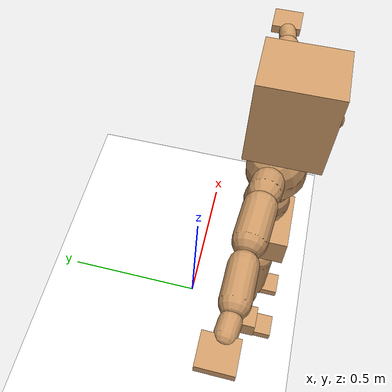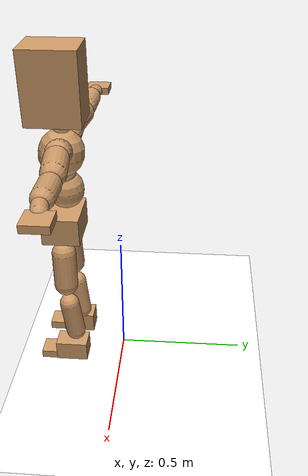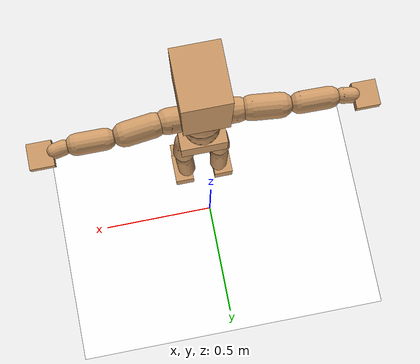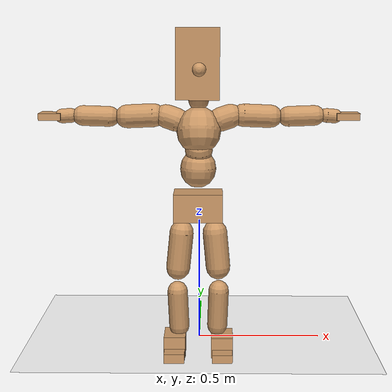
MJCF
<mujoco model="humanoid">
  <option integrator="implicitfast" />

  <visual>
    <global offwidth="1280" offheight="960" />
    <headlight active="1" ambient="0.34 0.34 0.34" diffuse="0.5 0.5 0.5" />
  </visual>

  <default>
    <joint damping="2" stiffness="2" armature="0.01" limited="true" solimplimit="0 .99 .01" />
    <geom condim="1" friction="0.7 0.005 0.0001" solimp=".99 .99 .003" solref="0.015 1" margin="0.001" rgba="0.8 0.6 .4 1" />
    <default class="smplcontact">
      <geom condim="3" friction="1. 0.005 0.0001" solref="0.015 1" solimp="0.98 0.98 0.001" priority="1" />
    </default>
    <default class="stiff_medium">
      <joint stiffness="10" />
    </default>
    <default class="stiff_medium_higher">
      <joint stiffness="50" />
    </default>
    <default class="stiff_high">
      <joint stiffness="100" />
    </default>
  </default>

  <asset>
    <texture type="skybox" builtin="gradient" rgb1="0.99 0.99 0.99" rgb2="0.608 0.828 0.892" width="100" />
    <texture builtin="flat" height="1278" mark="cross" markrgb="1 1 1" name="texgeom" random="0.01" rgb1="0.8 0.6 0.4" rgb2="0.8 0.6 0.4" type="cube" width="127" />
    <texture name="texplane" type="2d" builtin="checker" markrgb="1 1 1" rgb1="0.756 0.772 0.76" rgb2="0.6 0.6 0.6" width="100" height="100" />
    <material name="MatPlane" reflectance="0.5" texture="texplane" texrepeat="1 1" texuniform="true" />
    <material name="geom" texture="texgeom" texuniform="true" />
  </asset>

  <worldbody>
    <light name="tracking_light" pos="0 0 7" dir="0 0 -1" directional="true" cutoff="100" exponent="1" diffuse="1 1 1" specular="0.1 0.1 0.1" mode="trackcom" />
    <camera name="back" pos="0 3 2.4" xyaxes="-1 0 0 0 -1 2" mode="trackcom" />
    <camera name="side" pos="-3 0 2.4" xyaxes="0 -1 0 1 0 2" mode="trackcom" />
    <camera name="front_side" pos="-2.8 -2.8 0.8" xyaxes="0.5 -0.5 0 0.1 0.1 1" mode="trackcom" />
    <geom condim="3" name="floor" pos="0 0 0" rgba="1 1 1 1" size="100 100 .2" type="plane" material="MatPlane" />
    <body name="Pelvis" pos="-0.0018 -0.2233 0.611824" euler="90 0 0">
      <site name="Pelvis" size="0.01" />
      <freejoint name="Pelvis" />
      <geom type="box" pos="0 -0.00908895 -0.00484" size="0.094072 0.0542332 0.07304" quat="1.0000 0.0000 0.0000 0.0000" density="3165.830099" name="Pelvis" />
      <body name="L_Hip" pos="0.06116 -0.0686554 -0.005984">
        <joint name="L_Hip_x" type="hinge" pos="0 0 0" axis="1 0 0" stiffness="10" range="-160.0 22.92" class="stiff_medium" damping="15" />
        <joint name="L_Hip_y" type="hinge" pos="0 0 0" axis="0 1 0" stiffness="10" range="-70.0 70.0" class="stiff_medium" damping="10" />
        <joint name="L_Hip_z" type="hinge" pos="0 0 0" axis="0 0 1" stiffness="10" range="-28.65 90.0" class="stiff_medium" damping="10" />
        <geom type="capsule" density="2040.816327" fromto="0.00430888 -0.0467194 -0.000560751 0.0170791 -0.187005 -0.00224268" size="0.047355" name="L_Hip" />
        <body name="L_Knee" pos="0.021388 -0.233725 -0.00280343">
          <joint name="L_Knee_x" type="hinge" pos="0 0 0" axis="1 0 0" range="-5.16 171.89" damping="8" />
          <joint name="L_Knee_y" type="hinge" pos="0 0 0" axis="0 1 0" range="-4.58 6.88" damping="8" />
          <joint name="L_Knee_z" type="hinge" pos="0 0 0" axis="0 0 1" range="-6.88 4.58" damping="8" />
          <geom type="capsule" density="1234.567901" fromto="-0.0016784 -0.0495868 -0.00541253 -0.00678649 -0.198344 -0.0217958" size="0.039493" name="L_Knee" />
          <body name="L_Ankle" pos="-0.00846489 -0.247931 -0.0272083">
            <joint name="L_Ankle_x" type="hinge" pos="0 0 0" axis="1 0 0" range="-45.84 45.84" class="stiff_medium" damping="6" />
            <joint name="L_Ankle_y" type="hinge" pos="0 0 0" axis="0 1 0" range="-74.48 22.92" class="stiff_medium" damping="3" />
            <joint name="L_Ankle_z" type="hinge" pos="0 0 0" axis="0 0 1" range="-4.58 4.58" class="stiff_medium" damping="6" />
            <geom type="box" pos="0.0203875 -0.0209125 0.0182681" size="0.0422625 0.0406 0.064165" quat="1.0000 0.0000 0.0000 0.0000" density="449.071558" name="L_Ankle" class="smplcontact" />
            <body name="L_Toe" pos="0.0231 -0.048825 0.0900574">
              <joint name="L_Toe_x" type="hinge" pos="0 0 0" axis="1 0 0" range="-91.67 22.92" />
              <joint name="L_Toe_y" type="hinge" pos="0 0 0" axis="0 1 0" range="-4.58 4.58" />
              <joint name="L_Toe_z" type="hinge" pos="0 0 0" axis="0 0 1" range="-4.58 4.58" />
              <geom type="box" pos="-0.00249 0.004565 0.0187211" size="0.039674 0.0166 0.0374421" quat="1.0000 0.0000 0.0000 0.0000" density="423.206892" name="L_Toe" class="smplcontact" />
            </body>
          </body>
        </body>
      </body>
      <body name="R_Hip" pos="-0.059576 -0.0679793 -0.003784">
        <joint name="R_Hip_x" type="hinge" pos="0 0 0" axis="1 0 0" stiffness="10" range="-160.0 22.92" class="stiff_medium" damping="15" />
        <joint name="R_Hip_y" type="hinge" pos="0 0 0" axis="0 1 0" stiffness="10" range="-70.0 70.0" class="stiff_medium" damping="10" />
        <joint name="R_Hip_z" type="hinge" pos="0 0 0" axis="0 0 1" stiffness="10" range="-90.0 28.65" class="stiff_medium" damping="10" />
        <geom type="capsule" density="2040.816327" fromto="-0.00480681 -0.0476537 -0.00112628 -0.0190721 -0.19068 -0.00442785" size="0.046662" name="R_Hip" />
        <body name="R_Knee" pos="-0.0238789 -0.238334 -0.00555413">
          <joint name="R_Knee_x" type="hinge" pos="0 0 0" axis="1 0 0" range="-5.16 171.89" damping="8" />
          <joint name="R_Knee_y" type="hinge" pos="0 0 0" axis="0 1 0" range="-6.88 4.58" damping="8" />
          <joint name="R_Knee_z" type="hinge" pos="0 0 0" axis="0 0 1" range="-4.58 6.88" damping="8" />
          <geom type="capsule" density="1234.567901" fromto="0.00200036 -0.0496472 -0.00530163 0.00785598 -0.19853 -0.021062" size="0.039493" name="R_Knee" />
          <body name="R_Ankle" pos="0.00985634 -0.248177 -0.0263636">
            <joint name="R_Ankle_x" type="hinge" pos="0 0 0" axis="1 0 0" range="-45.84 45.84" class="stiff_medium" damping="6" />
            <joint name="R_Ankle_y" type="hinge" pos="0 0 0" axis="0 1 0" range="-22.92 74.48" class="stiff_medium" damping="3" />
            <joint name="R_Ankle_z" type="hinge" pos="0 0 0" axis="0 0 1" range="-4.58 4.58" class="stiff_medium" damping="6" />
            <geom type="box" pos="-0.01855 -0.015225 0.019325" size="0.0422625 0.041825 0.0652973" quat="1.0000 0.0000 0.0000 0.0000" density="434.700981" name="R_Ankle" class="smplcontact" />
            <body name="R_Toe" pos="-0.022225 -0.0420875 0.093077">
              <joint name="R_Toe_x" type="hinge" pos="0 0 0" axis="1 0 0" range="-91.67 22.92" />
              <joint name="R_Toe_y" type="hinge" pos="0 0 0" axis="0 1 0" range="-4.58 4.58" />
              <joint name="R_Toe_z" type="hinge" pos="0 0 0" axis="0 0 1" range="-4.58 4.58" />
              <geom type="box" pos="0.003486 0.003735 0.0171358" size="0.039757 0.017928 0.0372157" quat="1.0000 0.0000 0.0000 0.0000" density="407.384095" name="R_Toe" class="smplcontact" />
            </body>
          </body>
        </body>
      </body>
      <body name="Torso" pos="-0.0022 0.0818756 -0.023496">
        <joint name="Torso_x" type="hinge" pos="0 0 0" axis="1 0 0" range="-25.78 57.3" class="stiff_medium" damping="15" />
        <joint name="Torso_y" type="hinge" pos="0 0 0" axis="0 1 0" range="-57.3 57.3" class="stiff_high" damping="20" />
        <joint name="Torso_z" type="hinge" pos="0 0 0" axis="0 0 1" range="-34.38 34.38" class="stiff_high" damping="20" />
        <geom type="capsule" density="2040.816327" fromto="0.00193728 0.04631 0.000387455 0.00231813 0.0565929 0.000463625" size="0.0688255" name="Torso" />
        <body name="Spine" pos="0.00425491 0.102979 0.000850982">
          <joint name="Spine_x" type="hinge" pos="0 0 0" axis="1 0 0" stiffness="10" range="-25.78 57.3" class="stiff_medium" damping="15" />
          <joint name="Spine_y" type="hinge" pos="0 0 0" axis="0 1 0" stiffness="10" range="-57.3 57.3" class="stiff_high" damping="8" />
          <joint name="Spine_z" type="hinge" pos="0 0 0" axis="0 0 1" stiffness="20" range="-34.38 34.38" class="stiff_high" damping="12" />
          <geom type="capsule" density="2040.816327" fromto="0.000517963 0.0181221 0.00869684 0.000594133 0.0221591 0.0106772" size="0.0529632" name="Spine" />
          <body name="Chest" pos="0.0011121 0.0402812 0.0193741">
            <joint name="Chest_x" type="hinge" pos="0 0 0" axis="1 0 0" stiffness="10" range="-25.78 57.3" class="stiff_medium" damping="15" />
            <joint name="Chest_y" type="hinge" pos="0 0 0" axis="0 1 0" stiffness="10" range="-57.3 57.3" class="stiff_high" damping="8" />
            <joint name="Chest_z" type="hinge" pos="0 0 0" axis="0 0 1" stiffness="20" range="-34.38 34.38" class="stiff_high" damping="12" />
            <geom type="capsule" density="2040.816327" fromto="-0.000725161 0.0519543 -0.0131513 -0.000801331 0.0634559 -0.0161219" size="0.08517" name="Chest" />
            <body name="Neck" pos="-0.00225666 0.16319 -0.0316547">
              <joint name="Neck_x" type="hinge" pos="0 0 0" axis="1 0 0" range="-28.65 57.3" class="stiff_medium_higher" damping="10" />
              <joint name="Neck_y" type="hinge" pos="0 0 0" axis="0 1 0" range="-40.11 40.11" class="stiff_medium_higher" damping="10" />
              <joint name="Neck_z" type="hinge" pos="0 0 0" axis="0 0 1" range="-40.11 40.11" class="stiff_medium_higher" damping="10" />
              <geom type="capsule" density="1000" fromto="0.00074936 0.00981114 0.00777879 0.00308949 0.0392515 0.0310292" size="0.039894" name="Neck" />
              <body name="Head" pos="0.00393091 0.0490697 0.0387219">
                <joint name="Head_x" type="hinge" pos="0 0 0" axis="1 0 0" range="-28.65 57.3" class="stiff_medium_higher" damping="2" />
                <joint name="Head_y" type="hinge" pos="0 0 0" axis="0 1 0" range="-40.11 40.11" class="stiff_medium_higher" damping="2" />
                <joint name="Head_z" type="hinge" pos="0 0 0" axis="0 0 1" range="-40.11 40.11" class="stiff_medium_higher" damping="2" />
                <geom type="box" pos="-0.005691 0.101095 -0.015718" size="0.082113 0.133178 0.10298" quat="1.0000 0.0000 0.0000 0.0000" density="1018.069894" name="Head" />
                <geom type="capsule" name="nose" size="0.0271 0.01355" pos="0 0.080784 0.06775" quat="1 0 0 0" mass="0" contype="0" conaffinity="0" />
              </body>
            </body>
            <body name="L_Thorax" pos="0.0670513 0.0926852 -0.026206">
              <joint name="L_Thorax_x" type="hinge" pos="0 0 0" axis="1 0 0" range="-10.89 4.58" class="stiff_medium_higher" damping="20" />
              <joint name="L_Thorax_y" type="hinge" pos="0 0 0" axis="0 1 0" range="-28.65 17.19" class="stiff_medium_higher" damping="20" />
              <joint name="L_Thorax_z" type="hinge" pos="0 0 0" axis="0 0 1" range="-31.51 40.11" class="stiff_medium_higher" damping="20" />
              <geom type="capsule" density="1000" fromto="0.013481 0.00451834 -0.00133842 0.0539251 0.0180738 -0.00526432" size="0.0466295" name="L_Thorax" />
              <body name="L_Shoulder" pos="0.0674061 0.0225922 -0.00660275">
                <joint name="L_Shoulder_x" type="hinge" pos="0 0 0" axis="1 0 0" range="-97.4 97.4" class="stiff_medium" damping="6" />
                <joint name="L_Shoulder_y" type="hinge" pos="0 0 0" axis="0 1 0" range="-108.86 80.21" class="stiff_medium" damping="6" />
                <joint name="L_Shoulder_z" type="hinge" pos="0 0 0" axis="0 0 1" range="-97.4 85.94" class="stiff_medium" damping="6" />
                <geom type="capsule" density="1000" fromto="0.0351397 -0.00177287 -0.00372451 0.140629 -0.00691867 -0.0148963" size="0.044462" name="L_Shoulder" />
                <body name="L_Elbow" pos="0.175768 -0.00869153 -0.0186208">
                  <joint name="L_Elbow_x" type="hinge" pos="0 0 0" axis="1 0 0" range="-17.19 4.58" damping="5" />
                  <joint name="L_Elbow_y" type="hinge" pos="0 0 0" axis="0 1 0" range="-180.0 17.19" damping="5" />
                  <joint name="L_Elbow_z" type="hinge" pos="0 0 0" axis="0 0 1" range="-100.84 4.58" damping="5" />
                  <geom type="capsule" density="1000" fromto="0.0337186 0.00121944 -0.000125908 0.13501 0.00487566 -0.000599864" size="0.0390825" name="L_Elbow" />
                  <body name="L_Wrist" pos="0.168728 0.00609509 -0.000822271">
                    <joint name="L_Wrist_x" type="hinge" pos="0 0 0" axis="1 0 0" range="-180.0 22.92" />
                    <joint name="L_Wrist_y" type="hinge" pos="0 0 0" axis="0 1 0" range="-17.19 17.19" />
                    <joint name="L_Wrist_z" type="hinge" pos="0 0 0" axis="0 0 1" range="-22.92 22.92" />
                    <geom type="capsule" density="1000" fromto="0.0113755 -0.00107712 -0.00203134 0.0455003 -0.00439481 -0.00812505" size="0.027507" name="L_Wrist" class="smplcontact" />
                    <body name="L_Hand" pos="0.0568773 -0.00555857 -0.0100702">
                      <joint name="L_Hand_x" type="hinge" pos="0 0 0" axis="1 0 0" range="-17.19 17.19" />
                      <joint name="L_Hand_y" type="hinge" pos="0 0 0" axis="0 1 0" range="-51.57 51.57" />
                      <joint name="L_Hand_z" type="hinge" pos="0 0 0" axis="0 0 1" range="-91.67 91.67" />
                      <geom type="box" pos="0.0370318 0.000855 -0.004959" size="0.0439424 0.013509 0.045999" quat="1.0000 0.0000 0.0000 0.0000" density="400.552564" name="L_Hand" class="smplcontact" />
                    </body>
                  </body>
                </body>
              </body>
            </body>
            <body name="R_Thorax" pos="-0.0694591 0.090276 -0.0300454">
              <joint name="R_Thorax_x" type="hinge" pos="0 0 0" axis="1 0 0" range="-10.89 4.58" class="stiff_medium_higher" damping="20" />
              <joint name="R_Thorax_y" type="hinge" pos="0 0 0" axis="0 1 0" range="-17.19 28.65" class="stiff_medium_higher" damping="20" />
              <joint name="R_Thorax_z" type="hinge" pos="0 0 0" axis="0 0 1" range="-40.11 31.51" class="stiff_medium_higher" damping="20" />
              <geom type="capsule" density="1000" fromto="-0.0142226 0.00481493 -0.00132822 -0.056889 0.0192593 -0.00540227" size="0.0457345" name="R_Thorax" />
              <body name="R_Shoulder" pos="-0.0711069 0.0241621 -0.00673005">
                <joint name="R_Shoulder_x" type="hinge" pos="0 0 0" axis="1 0 0" range="-97.4 97.4" class="stiff_medium" damping="6" />
                <joint name="R_Shoulder_y" type="hinge" pos="0 0 0" axis="0 1 0" range="-80.21 108.86" class="stiff_medium" damping="6" />
                <joint name="R_Shoulder_z" type="hinge" pos="0 0 0" axis="0 0 1" range="-85.94 97.4" class="stiff_medium" damping="6" />
                <geom type="capsule" density="1000" fromto="-0.034327 -0.0018348 -0.00291848 -0.137446 -0.00725143 -0.0115851" size="0.045666" name="R_Shoulder" />
                <body name="R_Elbow" pos="-0.171774 -0.00900029 -0.0145037">
                  <joint name="R_Elbow_x" type="hinge" pos="0 0 0" axis="1 0 0" range="-17.19 4.58" damping="5" />
                  <joint name="R_Elbow_y" type="hinge" pos="0 0 0" axis="0 1 0" range="-17.19 180.0" damping="5" />
                  <joint name="R_Elbow_z" type="hinge" pos="0 0 0" axis="0 0 1" range="-4.58 100.84" damping="5" />
                  <geom type="capsule" density="1000" fromto="-0.0345982 0.00110193 -0.000744361 -0.138259 0.00421649 -0.00297872" size="0.039372" name="R_Elbow" />
                  <body name="R_Wrist" pos="-0.172857 0.0053184 -0.00381957">
                    <joint name="R_Wrist_x" type="hinge" pos="0 0 0" axis="1 0 0" range="-180.0 22.92" />
                    <joint name="R_Wrist_y" type="hinge" pos="0 0 0" axis="0 1 0" range="-17.19 17.19" />
                    <joint name="R_Wrist_z" type="hinge" pos="0 0 0" axis="0 0 1" range="-22.92 22.92" />
                    <geom type="capsule" density="1000" fromto="-0.0114422 -0.000806656 -0.00142884 -0.0458378 -0.00331185 -0.00562673" size="0.028199" name="R_Wrist" class="smplcontact" />
                    <body name="R_Hand" pos="-0.0572823 -0.00411867 -0.00696935">
                      <joint name="R_Hand_x" type="hinge" pos="0 0 0" axis="1 0 0" range="-17.19 17.19" />
                      <joint name="R_Hand_y" type="hinge" pos="0 0 0" axis="0 1 0" range="-51.57 51.57" />
                      <joint name="R_Hand_z" type="hinge" pos="0 0 0" axis="0 0 1" range="-91.67 91.67" />
                      <geom type="box" pos="-0.0347033 -0.0007695 -0.0067545" size="0.0427406 0.014022 0.046683" quat="1.0000 0.0000 0.0000 0.0000" density="403.679611" name="R_Hand" class="smplcontact" />
                    </body>
                  </body>
                </body>
              </body>
            </body>
          </body>
        </body>
      </body>
    </body>
  </worldbody>
  <actuator>
    <general name="L_Hip_x" joint="L_Hip_x" biastype="affine" gainprm="287.33006409732246" biasprm="-215.3247604770444 -180 -2.0" ctrllimited="true" ctrlrange="-1 1" forcerange="-360 360" />
    <general name="L_Hip_y" joint="L_Hip_y" biastype="affine" gainprm="219.9114857512855" biasprm="0.0 -180 -2.0" ctrllimited="true" ctrlrange="-1 1" forcerange="-360 360" />
    <general name="L_Hip_z" joint="L_Hip_z" biastype="affine" gainprm="186.3749841742145" biasprm="96.3683546488669 -180 -2.0" ctrllimited="true" ctrlrange="-1 1" forcerange="-360 360" />
    <general name="L_Knee_x" joint="L_Knee_x" biastype="affine" gainprm="278.10948965903646" biasprm="261.8988715665131 -180 -2.0" ctrllimited="true" ctrlrange="-1 1" forcerange="-360 360" />
    <general name="L_Knee_y" joint="L_Knee_y" biastype="affine" gainprm="18.001325905069514" biasprm="3.612831551628262 -180 -2.0" ctrllimited="true" ctrlrange="-1 1" forcerange="-360 360" />
    <general name="L_Knee_z" joint="L_Knee_z" biastype="affine" gainprm="18.001325905069514" biasprm="-3.612831551628262 -180 -2.0" ctrllimited="true" ctrlrange="-1 1" forcerange="-360 360" />
    <general name="L_Ankle_x" joint="L_Ankle_x" biastype="affine" gainprm="72.00530362027807" biasprm="0.0 -90 -2.0" ctrllimited="true" ctrlrange="-1 1" forcerange="-180 180" />
    <general name="L_Ankle_y" joint="L_Ankle_y" biastype="affine" gainprm="76.49778111491148" biasprm="-40.49512930477244 -90 -2.0" ctrllimited="true" ctrlrange="-1 1" forcerange="-180 180" />
    <general name="L_Ankle_z" joint="L_Ankle_z" biastype="affine" gainprm="7.1942471767206255" biasprm="0.0 -90 -2.0" ctrllimited="true" ctrlrange="-1 1" forcerange="-180 180" />
    <general name="L_Toe_x" joint="L_Toe_x" biastype="affine" gainprm="71.99902043497087" biasprm="-43.19689898685965 -72 -0.8" ctrllimited="true" ctrlrange="-1 1" forcerange="-144 144" />
    <general name="L_Toe_y" joint="L_Toe_y" biastype="affine" gainprm="5.755397741376501" biasprm="0.0 -72 -0.8" ctrllimited="true" ctrlrange="-1 1" forcerange="-144 144" />
    <general name="L_Toe_z" joint="L_Toe_z" biastype="affine" gainprm="5.755397741376501" biasprm="0.0 -72 -0.8" ctrllimited="true" ctrlrange="-1 1" forcerange="-144 144" />
    <general name="R_Hip_x" joint="R_Hip_x" biastype="affine" gainprm="287.33006409732246" biasprm="-215.3247604770444 -180 -2.0" ctrllimited="true" ctrlrange="-1 1" forcerange="-360 360" />
    <general name="R_Hip_y" joint="R_Hip_y" biastype="affine" gainprm="219.9114857512855" biasprm="0.0 -180 -2.0" ctrllimited="true" ctrlrange="-1 1" forcerange="-360 360" />
    <general name="R_Hip_z" joint="R_Hip_z" biastype="affine" gainprm="186.3749841742145" biasprm="-96.3683546488669 -180 -2.0" ctrllimited="true" ctrlrange="-1 1" forcerange="-360 360" />
    <general name="R_Knee_x" joint="R_Knee_x" biastype="affine" gainprm="278.10948965903646" biasprm="261.8988715665131 -180 -2.0" ctrllimited="true" ctrlrange="-1 1" forcerange="-360 360" />
    <general name="R_Knee_y" joint="R_Knee_y" biastype="affine" gainprm="18.001325905069514" biasprm="-3.612831551628262 -180 -2.0" ctrllimited="true" ctrlrange="-1 1" forcerange="-360 360" />
    <general name="R_Knee_z" joint="R_Knee_z" biastype="affine" gainprm="18.001325905069514" biasprm="3.612831551628262 -180 -2.0" ctrllimited="true" ctrlrange="-1 1" forcerange="-360 360" />
    <general name="R_Ankle_x" joint="R_Ankle_x" biastype="affine" gainprm="72.00530362027807" biasprm="0.0 -90 -2.0" ctrllimited="true" ctrlrange="-1 1" forcerange="-180 180" />
    <general name="R_Ankle_y" joint="R_Ankle_y" biastype="affine" gainprm="76.49778111491148" biasprm="40.49512930477244 -90 -2.0" ctrllimited="true" ctrlrange="-1 1" forcerange="-180 180" />
    <general name="R_Ankle_z" joint="R_Ankle_z" biastype="affine" gainprm="7.1942471767206255" biasprm="0.0 -90 -2.0" ctrllimited="true" ctrlrange="-1 1" forcerange="-180 180" />
    <general name="R_Toe_x" joint="R_Toe_x" biastype="affine" gainprm="71.99902043497087" biasprm="-43.19689898685965 -72 -0.8" ctrllimited="true" ctrlrange="-1 1" forcerange="-144 144" />
    <general name="R_Toe_y" joint="R_Toe_y" biastype="affine" gainprm="5.755397741376501" biasprm="0.0 -72 -0.8" ctrllimited="true" ctrlrange="-1 1" forcerange="-144 144" />
    <general name="R_Toe_z" joint="R_Toe_z" biastype="affine" gainprm="5.755397741376501" biasprm="0.0 -72 -0.8" ctrllimited="true" ctrlrange="-1 1" forcerange="-144 144" />
    <general name="Torso_x" joint="Torso_x" biastype="affine" gainprm="174.00234510682668" biasprm="66.0153336274335 -240 -4.0" ctrllimited="true" ctrlrange="-1 1" forcerange="-360 360" />
    <general name="Torso_y" joint="Torso_y" biastype="affine" gainprm="240.0176787342602" biasprm="0.0 -240 -4.0" ctrllimited="true" ctrlrange="-1 1" forcerange="-360 360" />
    <general name="Torso_z" joint="Torso_z" biastype="affine" gainprm="144.01060724055614" biasprm="0.0 -240 -4.0" ctrllimited="true" ctrlrange="-1 1" forcerange="-360 360" />
    <general name="Spine_x" joint="Spine_x" biastype="affine" gainprm="174.00234510682668" biasprm="66.0153336274335 -240 -4.0" ctrllimited="true" ctrlrange="-1 1" forcerange="-360 360" />
    <general name="Spine_y" joint="Spine_y" biastype="affine" gainprm="240.0176787342602" biasprm="0.0 -240 -4.0" ctrllimited="true" ctrlrange="-1 1" forcerange="-360 360" />
    <general name="Spine_z" joint="Spine_z" biastype="affine" gainprm="144.01060724055614" biasprm="0.0 -240 -4.0" ctrllimited="true" ctrlrange="-1 1" forcerange="-360 360" />
    <general name="Chest_x" joint="Chest_x" biastype="affine" gainprm="174.00234510682668" biasprm="66.0153336274335 -240 -4.0" ctrllimited="true" ctrlrange="-1 1" forcerange="-360 360" />
    <general name="Chest_y" joint="Chest_y" biastype="affine" gainprm="240.0176787342602" biasprm="0.0 -240 -4.0" ctrllimited="true" ctrlrange="-1 1" forcerange="-360 360" />
    <general name="Chest_z" joint="Chest_z" biastype="affine" gainprm="144.01060724055614" biasprm="0.0 -240 -4.0" ctrllimited="true" ctrlrange="-1 1" forcerange="-360 360" />
    <general name="Neck_x" joint="Neck_x" biastype="affine" gainprm="27.00198885760427" biasprm="9.000662952534757 -36 -0.8" ctrllimited="true" ctrlrange="-1 1" forcerange="-72 72" />
    <general name="Neck_y" joint="Neck_y" biastype="affine" gainprm="25.20185626709732" biasprm="0.0 -36 -0.8" ctrllimited="true" ctrlrange="-1 1" forcerange="-72 72" />
    <general name="Neck_z" joint="Neck_z" biastype="affine" gainprm="25.20185626709732" biasprm="0.0 -36 -0.8" ctrllimited="true" ctrlrange="-1 1" forcerange="-72 72" />
    <general name="Head_x" joint="Head_x" biastype="affine" gainprm="18.001325905069514" biasprm="6.000441968356505 -24 -0.8" ctrllimited="true" ctrlrange="-1 1" forcerange="-48 48" />
    <general name="Head_y" joint="Head_y" biastype="affine" gainprm="16.801237511398213" biasprm="0.0 -24 -0.8" ctrllimited="true" ctrlrange="-1 1" forcerange="-48 48" />
    <general name="Head_z" joint="Head_z" biastype="affine" gainprm="16.801237511398213" biasprm="0.0 -24 -0.8" ctrllimited="true" ctrlrange="-1 1" forcerange="-48 48" />
    <general name="L_Thorax_x" joint="L_Thorax_x" biastype="affine" gainprm="16.200146117011364" biasprm="-6.6078165480505335 -120 -1.6" ctrllimited="true" ctrlrange="-1 1" forcerange="-240 240" />
    <general name="L_Thorax_y" joint="L_Thorax_y" biastype="affine" gainprm="48.00353574685204" biasprm="-12.00088393671301 -120 -1.6" ctrllimited="true" ctrlrange="-1 1" forcerange="-240 240" />
    <general name="L_Thorax_z" joint="L_Thorax_z" biastype="affine" gainprm="75.00028861670033" biasprm="9.00589894029074 -120 -1.6" ctrllimited="true" ctrlrange="-1 1" forcerange="-240 240" />
    <general name="L_Shoulder_x" joint="L_Shoulder_x" biastype="affine" gainprm="81.5976331892389" biasprm="0.0 -48 -1.6" ctrllimited="true" ctrlrange="-1 1" forcerange="-96 96" />
    <general name="L_Shoulder_y" joint="L_Shoulder_y" biastype="affine" gainprm="79.19745640189629" biasprm="-12.00088393671301 -48 -1.6" ctrllimited="true" ctrlrange="-1 1" forcerange="-96 96" />
    <general name="L_Shoulder_z" joint="L_Shoulder_z" biastype="affine" gainprm="76.79727961455369" biasprm="-4.800353574685214 -48 -1.6" ctrllimited="true" ctrlrange="-1 1" forcerange="-96 96" />
    <general name="L_Elbow_x" joint="L_Elbow_x" biastype="affine" gainprm="13.67849441372996" biasprm="-7.923096672353461 -72 -0.8" ctrllimited="true" ctrlrange="-1 1" forcerange="-144 144" />
    <general name="L_Elbow_y" joint="L_Elbow_y" biastype="affine" gainprm="123.89813107227425" biasprm="-102.29653998619085 -72 -0.8" ctrllimited="true" ctrlrange="-1 1" forcerange="-144 144" />
    <general name="L_Elbow_z" joint="L_Elbow_z" biastype="affine" gainprm="66.23733950828719" biasprm="-60.4819417669107 -72 -0.8" ctrllimited="true" ctrlrange="-1 1" forcerange="-144 144" />
    <general name="L_Wrist_x" joint="L_Wrist_x" biastype="affine" gainprm="21.24973270888136" biasprm="-16.449379134196157 -12 -0.8" ctrllimited="true" ctrlrange="-1 1" forcerange="-24 24" />
    <general name="L_Wrist_y" joint="L_Wrist_y" biastype="affine" gainprm="3.6002651810139037" biasprm="0.0 -12 -0.8" ctrllimited="true" ctrlrange="-1 1" forcerange="-24 24" />
    <general name="L_Wrist_z" joint="L_Wrist_z" biastype="affine" gainprm="4.800353574685205" biasprm="0.0 -12 -0.8" ctrllimited="true" ctrlrange="-1 1" forcerange="-24 24" />
    <general name="L_Hand_x" joint="L_Hand_x" biastype="affine" gainprm="3.6002651810139037" biasprm="0.0 -12 -0.8" ctrllimited="true" ctrlrange="-1 1" forcerange="-24 24" />
    <general name="L_Hand_y" joint="L_Hand_y" biastype="affine" gainprm="10.800795543041708" biasprm="0.0 -12 -0.8" ctrllimited="true" ctrlrange="-1 1" forcerange="-24 24" />
    <general name="L_Hand_z" joint="L_Hand_z" biastype="affine" gainprm="19.199319903638422" biasprm="0.0 -12 -0.8" ctrllimited="true" ctrlrange="-1 1" forcerange="-24 24" />
    <general name="R_Thorax_x" joint="R_Thorax_x" biastype="affine" gainprm="16.200146117011364" biasprm="-6.6078165480505335 -120 -1.6" ctrllimited="true" ctrlrange="-1 1" forcerange="-240 240" />
    <general name="R_Thorax_y" joint="R_Thorax_y" biastype="affine" gainprm="48.00353574685204" biasprm="12.000883936713002 -120 -1.6" ctrllimited="true" ctrlrange="-1 1" forcerange="-240 240" />
    <general name="R_Thorax_z" joint="R_Thorax_z" biastype="affine" gainprm="75.00028861670033" biasprm="-9.00589894029074 -120 -1.6" ctrllimited="true" ctrlrange="-1 1" forcerange="-240 240" />
    <general name="R_Shoulder_x" joint="R_Shoulder_x" biastype="affine" gainprm="81.5976331892389" biasprm="0.0 -48 -1.6" ctrllimited="true" ctrlrange="-1 1" forcerange="-96 96" />
    <general name="R_Shoulder_y" joint="R_Shoulder_y" biastype="affine" gainprm="79.19745640189629" biasprm="12.00088393671301 -48 -1.6" ctrllimited="true" ctrlrange="-1 1" forcerange="-96 96" />
    <general name="R_Shoulder_z" joint="R_Shoulder_z" biastype="affine" gainprm="76.79727961455369" biasprm="4.800353574685204 -48 -1.6" ctrllimited="true" ctrlrange="-1 1" forcerange="-96 96" />
    <general name="R_Elbow_x" joint="R_Elbow_x" biastype="affine" gainprm="13.67849441372996" biasprm="-7.923096672353461 -72 -0.8" ctrllimited="true" ctrlrange="-1 1" forcerange="-144 144" />
    <general name="R_Elbow_y" joint="R_Elbow_y" biastype="affine" gainprm="123.89813107227425" biasprm="102.29653998619085 -72 -0.8" ctrllimited="true" ctrlrange="-1 1" forcerange="-144 144" />
    <general name="R_Elbow_z" joint="R_Elbow_z" biastype="affine" gainprm="66.23733950828719" biasprm="60.481941766910694 -72 -0.8" ctrllimited="true" ctrlrange="-1 1" forcerange="-144 144" />
    <general name="R_Wrist_x" joint="R_Wrist_x" biastype="affine" gainprm="21.24973270888136" biasprm="-16.449379134196157 -12 -0.8" ctrllimited="true" ctrlrange="-1 1" forcerange="-24 24" />
    <general name="R_Wrist_y" joint="R_Wrist_y" biastype="affine" gainprm="3.6002651810139037" biasprm="0.0 -12 -0.8" ctrllimited="true" ctrlrange="-1 1" forcerange="-24 24" />
    <general name="R_Wrist_z" joint="R_Wrist_z" biastype="affine" gainprm="4.800353574685205" biasprm="0.0 -12 -0.8" ctrllimited="true" ctrlrange="-1 1" forcerange="-24 24" />
    <general name="R_Hand_x" joint="R_Hand_x" biastype="affine" gainprm="3.6002651810139037" biasprm="0.0 -12 -0.8" ctrllimited="true" ctrlrange="-1 1" forcerange="-24 24" />
    <general name="R_Hand_y" joint="R_Hand_y" biastype="affine" gainprm="10.800795543041708" biasprm="0.0 -12 -0.8" ctrllimited="true" ctrlrange="-1 1" forcerange="-24 24" />
    <general name="R_Hand_z" joint="R_Hand_z" biastype="affine" gainprm="19.199319903638422" biasprm="0.0 -12 -0.8" ctrllimited="true" ctrlrange="-1 1" forcerange="-24 24" />
  </actuator>
  <contact>
    <exclude body1="Torso" body2="Chest" />
    <exclude body1="Head" body2="Chest" />
    <exclude body1="R_Knee" body2="R_Toe" />
    <exclude body1="R_Knee" body2="L_Ankle" />
    <exclude body1="R_Knee" body2="L_Toe" />
    <exclude body1="L_Knee" body2="L_Toe" />
    <exclude body1="L_Knee" body2="R_Ankle" />
    <exclude body1="L_Knee" body2="R_Toe" />
    <exclude body1="L_Shoulder" body2="Chest" />
    <exclude body1="R_Shoulder" body2="Chest" />
  </contact>
  <sensor>
    <framelinvel name="sensor_Pelvis_framelinvel" objtype="xbody" objname="Pelvis" />
    <framelinvel name="sensor_L_Hip_framelinvel" objtype="xbody" objname="L_Hip" />
    <framelinvel name="sensor_L_Knee_framelinvel" objtype="xbody" objname="L_Knee" />
    <framelinvel name="sensor_L_Ankle_framelinvel" objtype="xbody" objname="L_Ankle" />
    <framelinvel name="sensor_L_Toe_framelinvel" objtype="xbody" objname="L_Toe" />
    <framelinvel name="sensor_R_Hip_framelinvel" objtype="xbody" objname="R_Hip" />
    <framelinvel name="sensor_R_Knee_framelinvel" objtype="xbody" objname="R_Knee" />
    <framelinvel name="sensor_R_Ankle_framelinvel" objtype="xbody" objname="R_Ankle" />
    <framelinvel name="sensor_R_Toe_framelinvel" objtype="xbody" objname="R_Toe" />
    <framelinvel name="sensor_Torso_framelinvel" objtype="xbody" objname="Torso" />
    <framelinvel name="sensor_Spine_framelinvel" objtype="xbody" objname="Spine" />
    <framelinvel name="sensor_Chest_framelinvel" objtype="xbody" objname="Chest" />
    <framelinvel name="sensor_Neck_framelinvel" objtype="xbody" objname="Neck" />
    <framelinvel name="sensor_Head_framelinvel" objtype="xbody" objname="Head" />
    <framelinvel name="sensor_L_Thorax_framelinvel" objtype="xbody" objname="L_Thorax" />
    <framelinvel name="sensor_L_Shoulder_framelinvel" objtype="xbody" objname="L_Shoulder" />
    <framelinvel name="sensor_L_Elbow_framelinvel" objtype="xbody" objname="L_Elbow" />
    <framelinvel name="sensor_L_Wrist_framelinvel" objtype="xbody" objname="L_Wrist" />
    <framelinvel name="sensor_L_Hand_framelinvel" objtype="xbody" objname="L_Hand" />
    <framelinvel name="sensor_R_Thorax_framelinvel" objtype="xbody" objname="R_Thorax" />
    <framelinvel name="sensor_R_Shoulder_framelinvel" objtype="xbody" objname="R_Shoulder" />
    <framelinvel name="sensor_R_Elbow_framelinvel" objtype="xbody" objname="R_Elbow" />
    <framelinvel name="sensor_R_Wrist_framelinvel" objtype="xbody" objname="R_Wrist" />
    <framelinvel name="sensor_R_Hand_framelinvel" objtype="xbody" objname="R_Hand" />
    <frameangvel name="sensor_Pelvis_frameangvel" objtype="xbody" objname="Pelvis" />
    <frameangvel name="sensor_L_Hip_frameangvel" objtype="xbody" objname="L_Hip" />
    <frameangvel name="sensor_L_Knee_frameangvel" objtype="xbody" objname="L_Knee" />
    <frameangvel name="sensor_L_Ankle_frameangvel" objtype="xbody" objname="L_Ankle" />
    <frameangvel name="sensor_L_Toe_frameangvel" objtype="xbody" objname="L_Toe" />
    <frameangvel name="sensor_R_Hip_frameangvel" objtype="xbody" objname="R_Hip" />
    <frameangvel name="sensor_R_Knee_frameangvel" objtype="xbody" objname="R_Knee" />
    <frameangvel name="sensor_R_Ankle_frameangvel" objtype="xbody" objname="R_Ankle" />
    <frameangvel name="sensor_R_Toe_frameangvel" objtype="xbody" objname="R_Toe" />
    <frameangvel name="sensor_Torso_frameangvel" objtype="xbody" objname="Torso" />
    <frameangvel name="sensor_Spine_frameangvel" objtype="xbody" objname="Spine" />
    <frameangvel name="sensor_Chest_frameangvel" objtype="xbody" objname="Chest" />
    <frameangvel name="sensor_Neck_frameangvel" objtype="xbody" objname="Neck" />
    <frameangvel name="sensor_Head_frameangvel" objtype="xbody" objname="Head" />
    <frameangvel name="sensor_L_Thorax_frameangvel" objtype="xbody" objname="L_Thorax" />
    <frameangvel name="sensor_L_Shoulder_frameangvel" objtype="xbody" objname="L_Shoulder" />
    <frameangvel name="sensor_L_Elbow_frameangvel" objtype="xbody" objname="L_Elbow" />
    <frameangvel name="sensor_L_Wrist_frameangvel" objtype="xbody" objname="L_Wrist" />
    <frameangvel name="sensor_L_Hand_frameangvel" objtype="xbody" objname="L_Hand" />
    <frameangvel name="sensor_R_Thorax_frameangvel" objtype="xbody" objname="R_Thorax" />
    <frameangvel name="sensor_R_Shoulder_frameangvel" objtype="xbody" objname="R_Shoulder" />
    <frameangvel name="sensor_R_Elbow_frameangvel" objtype="xbody" objname="R_Elbow" />
    <frameangvel name="sensor_R_Wrist_frameangvel" objtype="xbody" objname="R_Wrist" />
    <frameangvel name="sensor_R_Hand_frameangvel" objtype="xbody" objname="R_Hand" />
    <subtreelinvel name="Chest_subtreelinvel" body="Chest" />
    <gyro name="Pelvis_gyro" site="Pelvis" />
  </sensor>
</mujoco>
